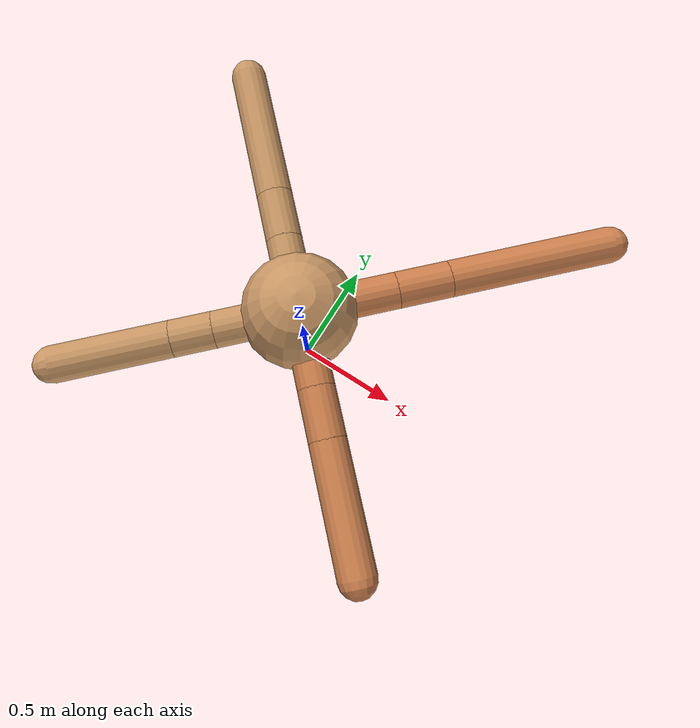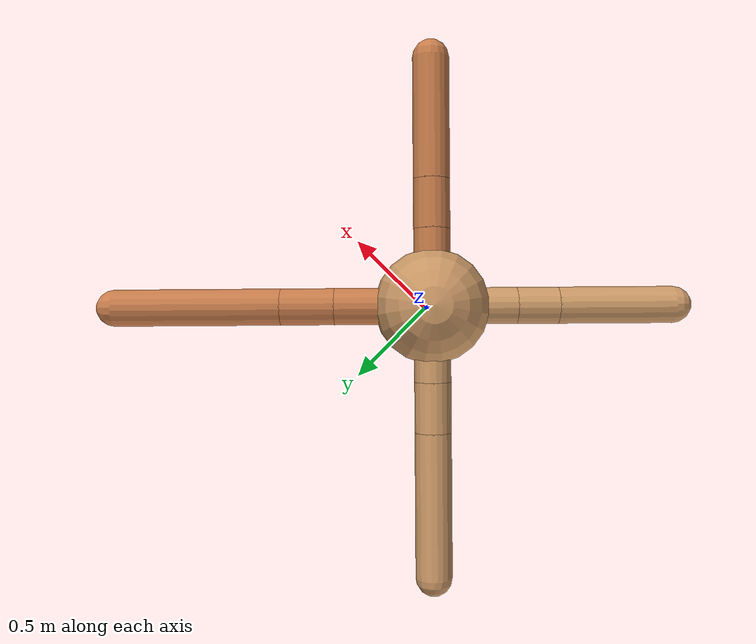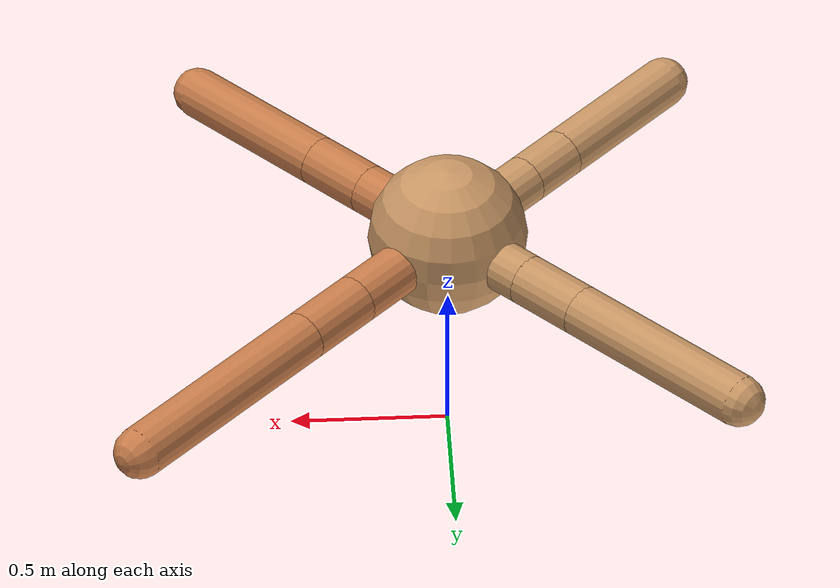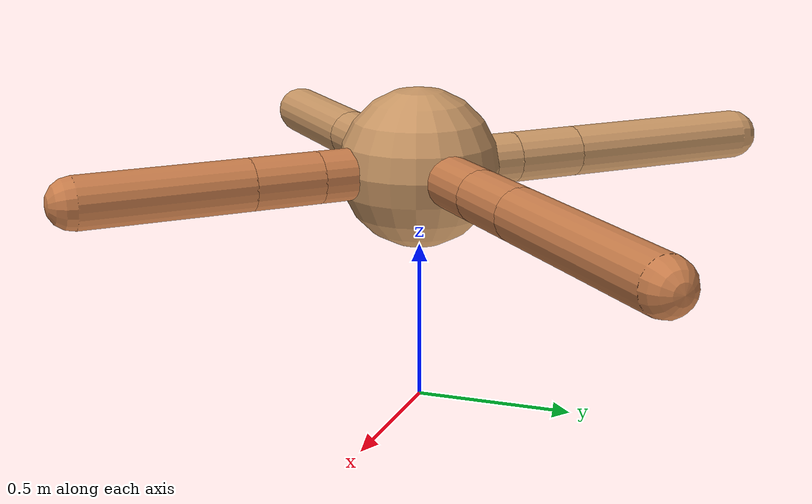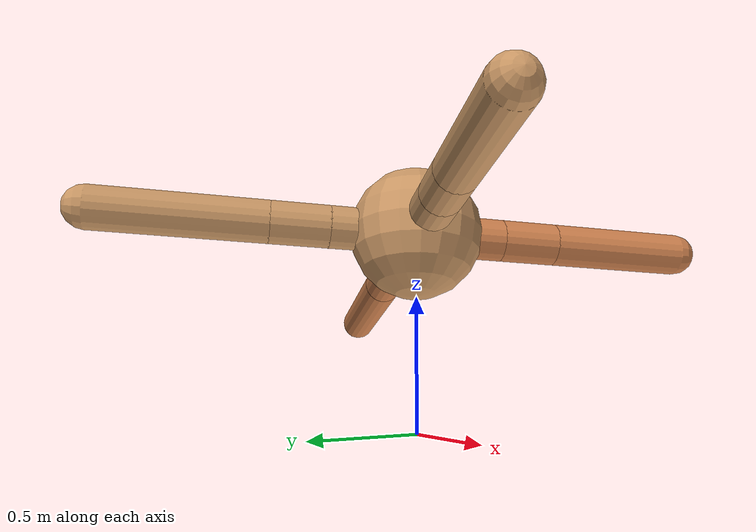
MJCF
<mujoco model="ant">
  <compiler angle="degree" coordinate="local" inertiafromgeom="true" />
  <option integrator="RK4" timestep="0.01" />
  <custom>
    <numeric data="0.0 0.0 0.55 1.0 0.0 0.0 0.0 0.0 1.0 0.0 -1.0 0.0 -1.0 0.0 1.0" name="init_qpos" />
  </custom>
  <default>
    <joint armature="1" damping="1" limited="true" />
    <geom conaffinity="0" condim="3" density="5.0" friction="1.5 0.1 0.1" margin="0.01" rgba="0.8 0.6 0.4 1" />
  </default>
  <worldbody>
    <body name="torso" pos="0 0 0.75">
      <geom name="torso_geom" pos="0 0 0" size="0.25" type="sphere" />

      <body name="front_left_leg" pos="0 0 0">
        <geom fromto="0.0 0.0 0.0 0.2989938766288224 0.2989938766288224 0.0" name="aux_1_geom" size="0.08" type="capsule" rgba=".8 .5 .3 1" />
        <body name="aux_1" pos="0.2989938766288224 0.2989938766288224 0.0">
          <joint axis="0 0 1" name="hip_1" pos="0.0 0.0 0.0" range="-40 40" type="hinge" />
          <geom fromto="0.0 0.0 0.0 0.163858179386136 0.163858179386136 0.0" name="left_leg_geom" size="0.08" type="capsule" rgba=".8 .5 .3 1" />
          <body pos="0.163858179386136 0.163858179386136 0.0" name="front_left_foot">
            <joint axis="-1 1 0" name="ankle_1" pos="0.0 0.0 0.0" range="30 100" type="hinge" />
            <geom fromto="0.0 0.0 0.0 0.5065847771355353 0.5065847771355353 0.0" name="left_ankle_geom" size="0.08" type="capsule" rgba=".8 .5 .3 1" />
          </body>
        </body>
      </body>
      <body name="front_right_leg" pos="0 0 0">
        <geom fromto="0.0 0.0 0.0 -0.23242229847065943 0.23242229847065943 0.0" name="aux_2_geom" size="0.08" type="capsule" />
        <body name="aux_2" pos="-0.23242229847065943 0.23242229847065943 0.0">
          <joint axis="0 0 1" name="hip_2" pos="0.0 0.0 0.0" range="-40 40" type="hinge" />
          <geom fromto="0.0 0.0 0.0 -0.15429436976000171 0.15429436976000171 0.0" name="right_leg_geom" size="0.08" type="capsule" />
          <body pos="-0.15429436976000171 0.15429436976000171 0.0" name="front_right_foot">
            <joint axis="1 1 0" name="ankle_2" pos="0.0 0.0 0.0" range="-100 -30" type="hinge" />
            <geom fromto="0.0 0.0 0.0 -0.4438556625311037 0.4438556625311037 0.0" name="right_ankle_geom" size="0.08" type="capsule" />
          </body>
        </body>
      </body>
      <body name="left_back_leg" pos="0 0 0">
        <geom fromto="0.0 0.0 0.0 -0.257674074374363 -0.257674074374363 0.0" name="aux_3_geom" size="0.08" type="capsule" />
        <body name="aux_3" pos="-0.257674074374363 -0.257674074374363 0.0">
          <joint axis="0 0 1" name="hip_3" pos="0.0 0.0 0.0" range="-40 40" type="hinge" />
          <geom fromto="0.0 0.0 0.0 -0.12574549637066326 -0.12574549637066326 0.0" name="back_leg_geom" size="0.08" type="capsule" />
          <body pos="-0.12574549637066326 -0.12574549637066326 0.0" name="left_back_foot">
            <joint axis="-1 1 0" name="ankle_3" pos="0.0 0.0 0.0" range="-100 -30" type="hinge" />
            <geom fromto="0.0 0.0 0.0 -0.3500418791983098 -0.3500418791983098 0.0" name="third_ankle_geom" size="0.08" type="capsule" />
          </body>
        </body>
      </body>
      <body name="right_back_leg" pos="0 0 0">
        <geom fromto="0.0 0.0 0.0 0.2366256434977667 -0.2366256434977667 0.0" name="aux_4_geom" size="0.08" type="capsule" rgba=".8 .5 .3 1" />
        <body name="aux_4" pos="0.2366256434977667 -0.2366256434977667 0.0">
          <joint axis="0 0 1" name="hip_4" pos="0.0 0.0 0.0" range="-40 40" type="hinge" />
          <geom fromto="0.0 0.0 0.0 0.15184275372066022 -0.15184275372066022 0.0" name="rightback_leg_geom" size="0.08" type="capsule" rgba=".8 .5 .3 1" />
          <body pos="0.15184275372066022 -0.15184275372066022 0.0" name="right_back_foot">
            <joint axis="1 1 0" name="ankle_4" pos="0.0 0.0 0.0" range="30 100" type="hinge" />
            <geom fromto="0.0 0.0 0.0 0.37142857282299835 -0.37142857282299835 0.0" name="fourth_ankle_geom" size="0.08" type="capsule" rgba=".8 .5 .3 1" />
          </body>
        </body>
      </body>
    </body>
  </worldbody>
  <actuator>
    <motor ctrllimited="true" ctrlrange="-1.0 1.0" joint="hip_4" gear="150" />
    <motor ctrllimited="true" ctrlrange="-1.0 1.0" joint="ankle_4" gear="150" />
    <motor ctrllimited="true" ctrlrange="-1.0 1.0" joint="hip_1" gear="150" />
    <motor ctrllimited="true" ctrlrange="-1.0 1.0" joint="ankle_1" gear="150" />
    <motor ctrllimited="true" ctrlrange="-1.0 1.0" joint="hip_2" gear="150" />
    <motor ctrllimited="true" ctrlrange="-1.0 1.0" joint="ankle_2" gear="150" />
    <motor ctrllimited="true" ctrlrange="-1.0 1.0" joint="hip_3" gear="150" />
    <motor ctrllimited="true" ctrlrange="-1.0 1.0" joint="ankle_3" gear="150" />
  </actuator>
</mujoco>
